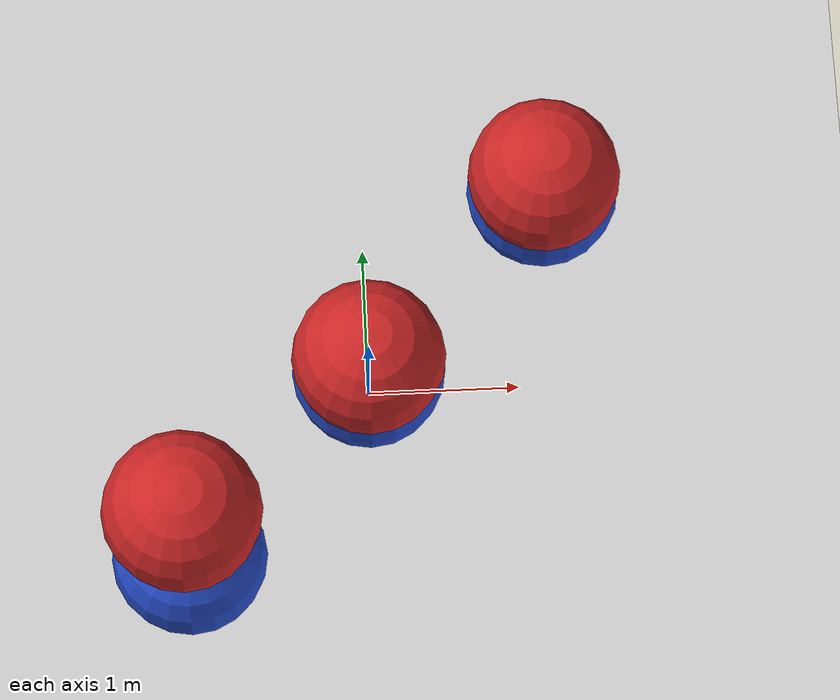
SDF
<?xml version="1.0"?>
<sdf version="1.6">
  <world name='default'>
    <!-- descend slowly -->
    <gravity>0 0 -0.1</gravity>
    <include>
      <uri>model://ground_plane</uri>
    </include>
    <include>
      <uri>model://sun</uri>
    </include>

    <model name='bottom_sphere_1'>
      <pose>-1.2 -1.2 0.5 0 0 0</pose>
      <link name='bottom_link'>
        <collision name='bottom_collision'>
          <geometry>
            <sphere>
              <radius>0.5</radius>
            </sphere>
          </geometry>
          <surface>
            <contact>
              <ode>
                <min_depth>0.5</min_depth>
              </ode>
            </contact>
          </surface>
        </collision>
        <visual name='bottom_visual'>
          <geometry>
            <sphere>
              <radius>0.5</radius>
            </sphere>
          </geometry>
          <material>
            <script>
              <uri>file://media/materials/scripts/gazebo.material</uri>
              <name>Gazebo/Blue</name>
            </script>
          </material>
        </visual>
      </link>
    </model>
    <model name="top_sphere_1">
      <pose>-1.2 -1.2 1.6 0 0 0</pose>
      <link name='top_link'>
        <collision name='top_collision'>
          <geometry>
            <sphere>
              <radius>0.5</radius>
            </sphere>
          </geometry>
          <surface>
            <contact>
              <ode>
                <min_depth>0.5</min_depth>
              </ode>
            </contact>
          </surface>
        </collision>
        <visual name='top_visual'>
          <geometry>
            <sphere>
              <radius>0.5</radius>
            </sphere>
          </geometry>
          <material>
            <script>
              <uri>file://media/materials/scripts/gazebo.material</uri>
              <name>Gazebo/Red</name>
            </script>
          </material>
        </visual>
      </link>
    </model>

    <model name='bottom_sphere_2'>
      <pose>0 0 0.5 0 0 0</pose>
      <link name='bottom_link'>
        <collision name='bottom_collision'>
          <geometry>
            <sphere>
              <radius>0.5</radius>
            </sphere>
          </geometry>
          <surface>
            <contact>
              <ode>
                <min_depth>0.0</min_depth>
              </ode>
            </contact>
          </surface>
        </collision>
        <visual name='bottom_visual'>
          <geometry>
            <sphere>
              <radius>0.5</radius>
            </sphere>
          </geometry>
          <material>
            <script>
              <uri>file://media/materials/scripts/gazebo.material</uri>
              <name>Gazebo/Blue</name>
            </script>
          </material>
        </visual>
      </link>
    </model>
    <model name="top_sphere_2">
      <pose>0 0 0.8 0 0 0</pose>
      <link name='top_link'>
        <collision name='top_collision'>
          <geometry>
            <sphere>
              <radius>0.5</radius>
            </sphere>
          </geometry>
          <surface>
            <contact>
              <ode>
                <min_depth>0.0</min_depth>
              </ode>
            </contact>
          </surface>
        </collision>
        <visual name='top_visual'>
          <geometry>
            <sphere>
              <radius>0.5</radius>
            </sphere>
          </geometry>
          <material>
            <script>
              <uri>file://media/materials/scripts/gazebo.material</uri>
              <name>Gazebo/Red</name>
            </script>
          </material>
        </visual>
      </link>
    </model>

    <model name='bottom_sphere_3'>
      <pose>1.2 1.2 0.5 0 0 0</pose>
      <link name='bottom_link'>
        <collision name='bottom_collision'>
          <geometry>
            <sphere>
              <radius>0.5</radius>
            </sphere>
          </geometry>
          <surface>
            <contact>
              <ode>
                <min_depth>0.5</min_depth>
              </ode>
            </contact>
          </surface>
        </collision>
        <visual name='bottom_visual'>
          <geometry>
            <sphere>
              <radius>0.5</radius>
            </sphere>
          </geometry>
          <material>
            <script>
              <uri>file://media/materials/scripts/gazebo.material</uri>
              <name>Gazebo/Blue</name>
            </script>
          </material>
        </visual>
      </link>
    </model>
    <model name="top_sphere_3">
      <pose>1.2 1.2 0.8 0 0 0</pose>
      <link name='top_link'>
        <collision name='top_collision'>
          <geometry>
            <sphere>
              <radius>0.5</radius>
            </sphere>
          </geometry>
          <surface>
            <contact>
              <ode>
                <min_depth>0.5</min_depth>
              </ode>
            </contact>
          </surface>
        </collision>
        <visual name='top_visual'>
          <geometry>
            <sphere>
              <radius>0.5</radius>
            </sphere>
          </geometry>
          <material>
            <script>
              <uri>file://media/materials/scripts/gazebo.material</uri>
              <name>Gazebo/Red</name>
            </script>
          </material>
        </visual>
      </link>
    </model>

  </world>
</sdf>
